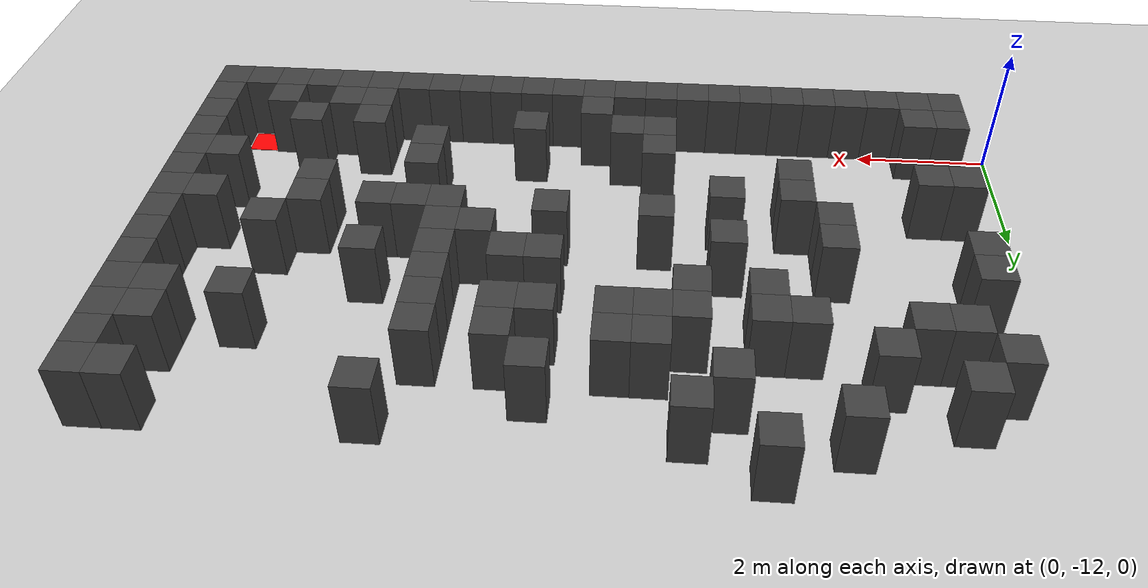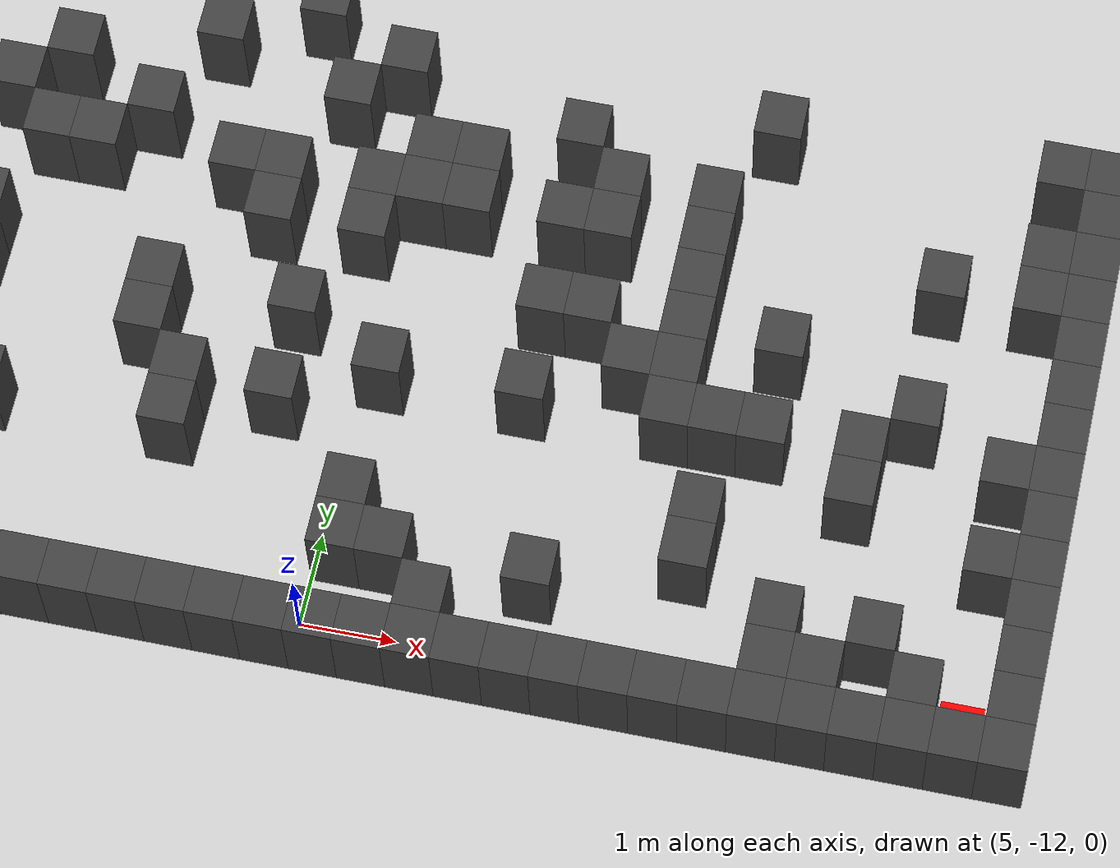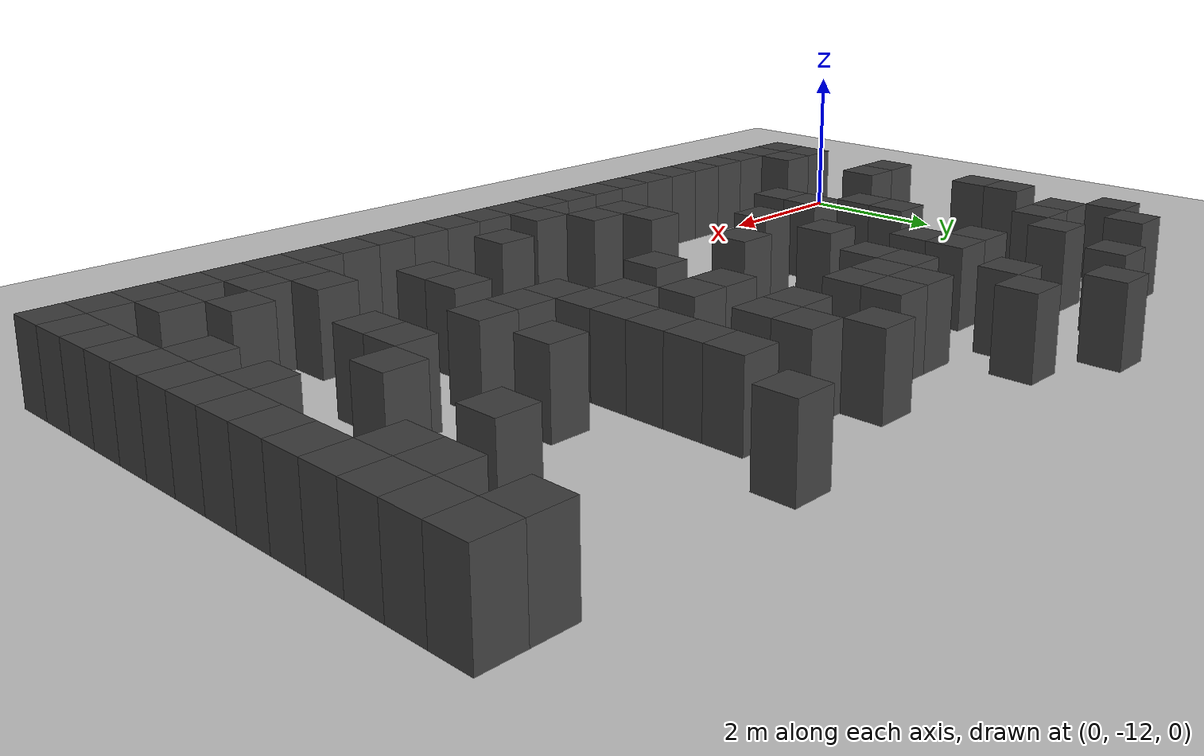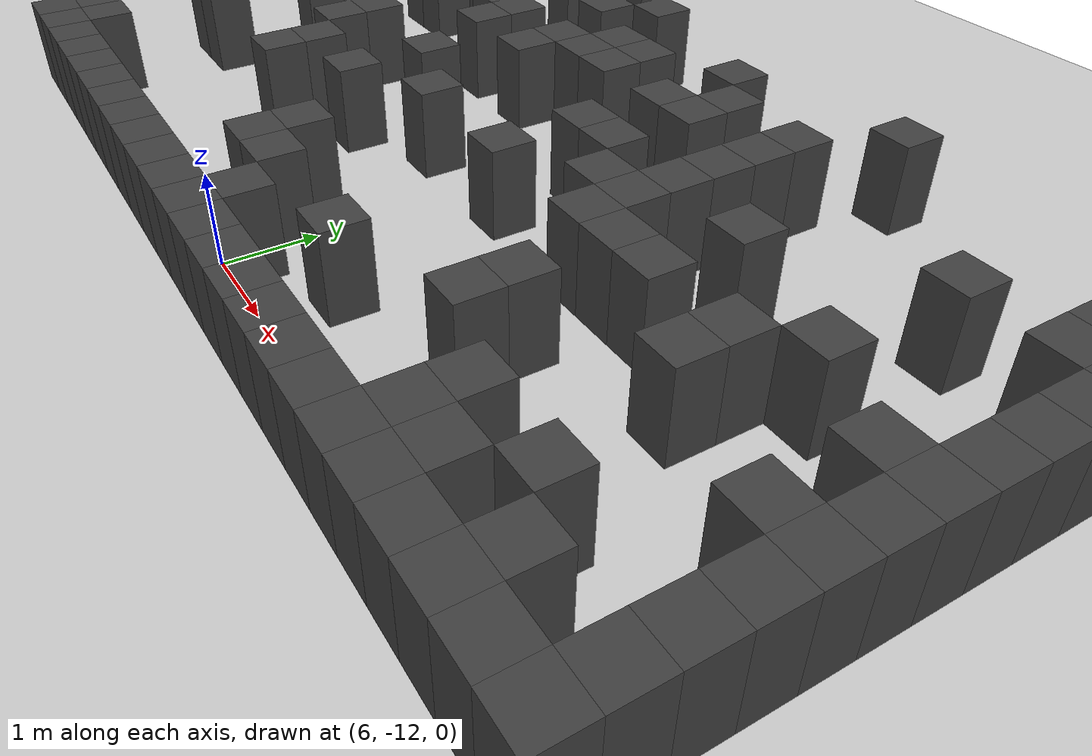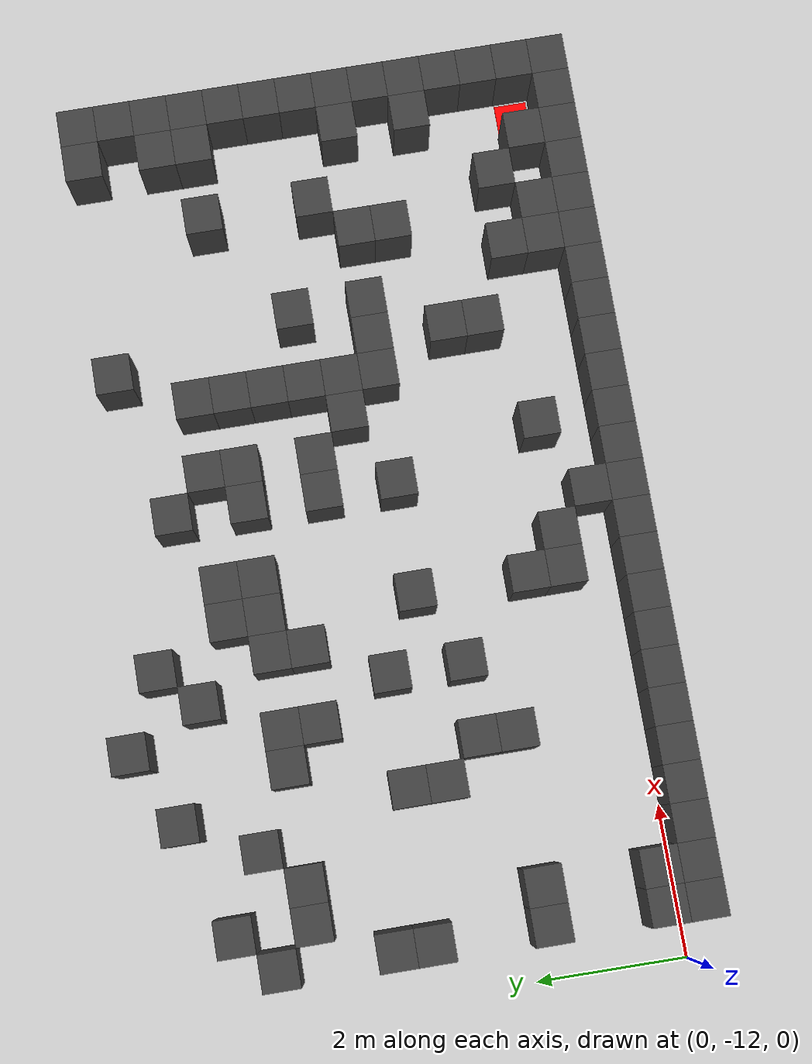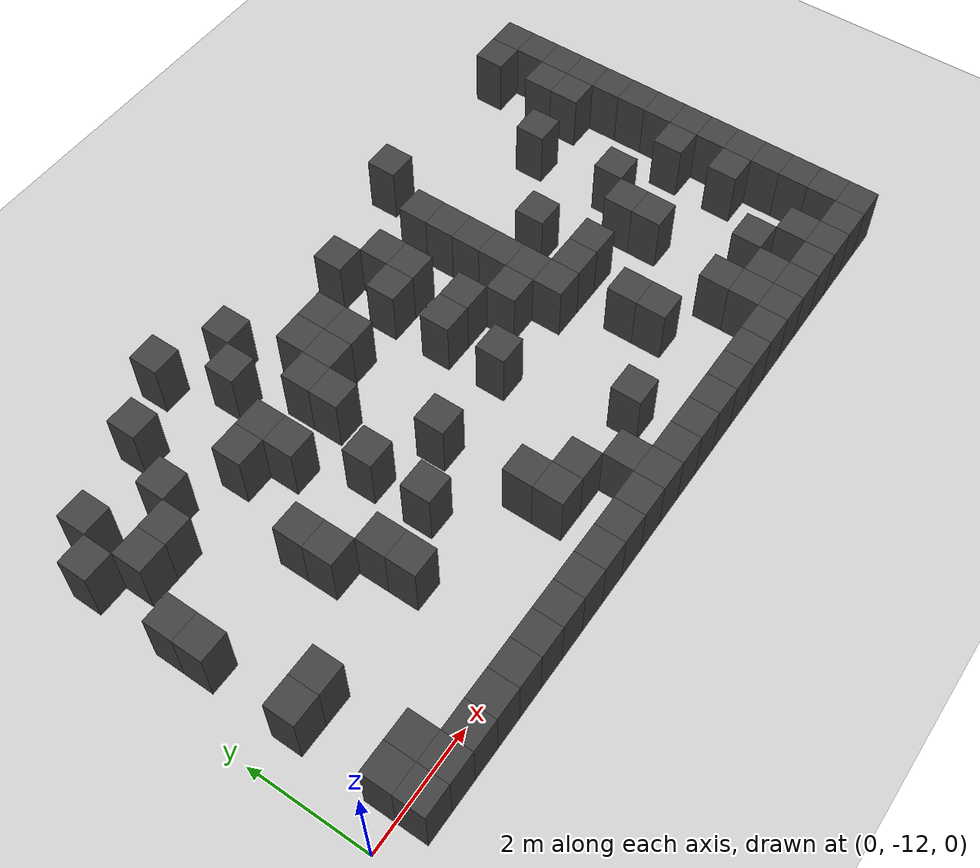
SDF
<sdf version="1.7">
 <world name="map_4009">
  <model name="ground_plane">
   <static>true</static>
   <link name="link">
    <collision name="collision">
     <geometry><plane><normal>0 0 1</normal><size>200 200</size></plane></geometry>
    </collision>
    <visual name="visual">
     <geometry><plane><normal>0 0 1</normal><size>200 200</size></plane></geometry>
     <material><ambient>0.8 0.8 0.8 1</ambient><diffuse>0.8 0.8 0.8 1</diffuse></material>
    </visual>
   </link>
  </model>
  <model name="maze_environment">
   <static>true</static>
   <link name="wall_439">
    <pose>3.750 -5.250 0.500 0 0 0</pose>
    <collision name="col"><geometry><box><size>0.5 0.5 1.0</size></box></geometry></collision>
    <visual name="vis">
     <geometry><box><size>0.5 0.5 1.0</size></box></geometry>
     <material><ambient>0.15 0.15 0.15 1</ambient><diffuse>0.25 0.25 0.25 1</diffuse></material>
    </visual>
   </link>
   <link name="wall_450">
    <pose>2.750 -5.750 0.500 0 0 0</pose>
    <collision name="col"><geometry><box><size>0.5 0.5 1.0</size></box></geometry></collision>
    <visual name="vis">
     <geometry><box><size>0.5 0.5 1.0</size></box></geometry>
     <material><ambient>0.15 0.15 0.15 1</ambient><diffuse>0.25 0.25 0.25 1</diffuse></material>
    </visual>
   </link>
   <link name="wall_451">
    <pose>4.750 -5.750 0.500 0 0 0</pose>
    <collision name="col"><geometry><box><size>0.5 0.5 1.0</size></box></geometry></collision>
    <visual name="vis">
     <geometry><box><size>0.5 0.5 1.0</size></box></geometry>
     <material><ambient>0.15 0.15 0.15 1</ambient><diffuse>0.25 0.25 0.25 1</diffuse></material>
    </visual>
   </link>
   <link name="wall_452">
    <pose>8.750 -5.750 0.500 0 0 0</pose>
    <collision name="col"><geometry><box><size>0.5 0.5 1.0</size></box></geometry></collision>
    <visual name="vis">
     <geometry><box><size>0.5 0.5 1.0</size></box></geometry>
     <material><ambient>0.15 0.15 0.15 1</ambient><diffuse>0.25 0.25 0.25 1</diffuse></material>
    </visual>
   </link>
   <link name="wall_453">
    <pose>11.750 -5.750 0.500 0 0 0</pose>
    <collision name="col"><geometry><box><size>0.5 0.5 1.0</size></box></geometry></collision>
    <visual name="vis">
     <geometry><box><size>0.5 0.5 1.0</size></box></geometry>
     <material><ambient>0.15 0.15 0.15 1</ambient><diffuse>0.25 0.25 0.25 1</diffuse></material>
    </visual>
   </link>
   <link name="wall_454">
    <pose>12.250 -5.750 0.500 0 0 0</pose>
    <collision name="col"><geometry><box><size>0.5 0.5 1.0</size></box></geometry></collision>
    <visual name="vis">
     <geometry><box><size>0.5 0.5 1.0</size></box></geometry>
     <material><ambient>0.15 0.15 0.15 1</ambient><diffuse>0.25 0.25 0.25 1</diffuse></material>
    </visual>
   </link>
   <link name="wall_460">
    <pose>1.250 -6.250 0.500 0 0 0</pose>
    <collision name="col"><geometry><box><size>0.5 0.5 1.0</size></box></geometry></collision>
    <visual name="vis">
     <geometry><box><size>0.5 0.5 1.0</size></box></geometry>
     <material><ambient>0.15 0.15 0.15 1</ambient><diffuse>0.25 0.25 0.25 1</diffuse></material>
    </visual>
   </link>
   <link name="wall_461">
    <pose>4.250 -6.250 0.500 0 0 0</pose>
    <collision name="col"><geometry><box><size>0.5 0.5 1.0</size></box></geometry></collision>
    <visual name="vis">
     <geometry><box><size>0.5 0.5 1.0</size></box></geometry>
     <material><ambient>0.15 0.15 0.15 1</ambient><diffuse>0.25 0.25 0.25 1</diffuse></material>
    </visual>
   </link>
   <link name="wall_462">
    <pose>6.750 -6.250 0.500 0 0 0</pose>
    <collision name="col"><geometry><box><size>0.5 0.5 1.0</size></box></geometry></collision>
    <visual name="vis">
     <geometry><box><size>0.5 0.5 1.0</size></box></geometry>
     <material><ambient>0.15 0.15 0.15 1</ambient><diffuse>0.25 0.25 0.25 1</diffuse></material>
    </visual>
   </link>
   <link name="wall_463">
    <pose>12.250 -6.250 0.500 0 0 0</pose>
    <collision name="col"><geometry><box><size>0.5 0.5 1.0</size></box></geometry></collision>
    <visual name="vis">
     <geometry><box><size>0.5 0.5 1.0</size></box></geometry>
     <material><ambient>0.15 0.15 0.15 1</ambient><diffuse>0.25 0.25 0.25 1</diffuse></material>
    </visual>
   </link>
   <link name="wall_472">
    <pose>0.750 -6.750 0.500 0 0 0</pose>
    <collision name="col"><geometry><box><size>0.5 0.5 1.0</size></box></geometry></collision>
    <visual name="vis">
     <geometry><box><size>0.5 0.5 1.0</size></box></geometry>
     <material><ambient>0.15 0.15 0.15 1</ambient><diffuse>0.25 0.25 0.25 1</diffuse></material>
    </visual>
   </link>
   <link name="wall_473">
    <pose>2.250 -6.750 0.500 0 0 0</pose>
    <collision name="col"><geometry><box><size>0.5 0.5 1.0</size></box></geometry></collision>
    <visual name="vis">
     <geometry><box><size>0.5 0.5 1.0</size></box></geometry>
     <material><ambient>0.15 0.15 0.15 1</ambient><diffuse>0.25 0.25 0.25 1</diffuse></material>
    </visual>
   </link>
   <link name="wall_474">
    <pose>5.250 -6.750 0.500 0 0 0</pose>
    <collision name="col"><geometry><box><size>0.5 0.5 1.0</size></box></geometry></collision>
    <visual name="vis">
     <geometry><box><size>0.5 0.5 1.0</size></box></geometry>
     <material><ambient>0.15 0.15 0.15 1</ambient><diffuse>0.25 0.25 0.25 1</diffuse></material>
    </visual>
   </link>
   <link name="wall_475">
    <pose>5.750 -6.750 0.500 0 0 0</pose>
    <collision name="col"><geometry><box><size>0.5 0.5 1.0</size></box></geometry></collision>
    <visual name="vis">
     <geometry><box><size>0.5 0.5 1.0</size></box></geometry>
     <material><ambient>0.15 0.15 0.15 1</ambient><diffuse>0.25 0.25 0.25 1</diffuse></material>
    </visual>
   </link>
   <link name="wall_476">
    <pose>7.250 -6.750 0.500 0 0 0</pose>
    <collision name="col"><geometry><box><size>0.5 0.5 1.0</size></box></geometry></collision>
    <visual name="vis">
     <geometry><box><size>0.5 0.5 1.0</size></box></geometry>
     <material><ambient>0.15 0.15 0.15 1</ambient><diffuse>0.25 0.25 0.25 1</diffuse></material>
    </visual>
   </link>
   <link name="wall_477">
    <pose>8.250 -6.750 0.500 0 0 0</pose>
    <collision name="col"><geometry><box><size>0.5 0.5 1.0</size></box></geometry></collision>
    <visual name="vis">
     <geometry><box><size>0.5 0.5 1.0</size></box></geometry>
     <material><ambient>0.15 0.15 0.15 1</ambient><diffuse>0.25 0.25 0.25 1</diffuse></material>
    </visual>
   </link>
   <link name="wall_478">
    <pose>11.750 -6.750 0.500 0 0 0</pose>
    <collision name="col"><geometry><box><size>0.5 0.5 1.0</size></box></geometry></collision>
    <visual name="vis">
     <geometry><box><size>0.5 0.5 1.0</size></box></geometry>
     <material><ambient>0.15 0.15 0.15 1</ambient><diffuse>0.25 0.25 0.25 1</diffuse></material>
    </visual>
   </link>
   <link name="wall_479">
    <pose>12.250 -6.750 0.500 0 0 0</pose>
    <collision name="col"><geometry><box><size>0.5 0.5 1.0</size></box></geometry></collision>
    <visual name="vis">
     <geometry><box><size>0.5 0.5 1.0</size></box></geometry>
     <material><ambient>0.15 0.15 0.15 1</ambient><diffuse>0.25 0.25 0.25 1</diffuse></material>
    </visual>
   </link>
   <link name="wall_484">
    <pose>1.250 -7.250 0.500 0 0 0</pose>
    <collision name="col"><geometry><box><size>0.5 0.5 1.0</size></box></geometry></collision>
    <visual name="vis">
     <geometry><box><size>0.5 0.5 1.0</size></box></geometry>
     <material><ambient>0.15 0.15 0.15 1</ambient><diffuse>0.25 0.25 0.25 1</diffuse></material>
    </visual>
   </link>
   <link name="wall_485">
    <pose>1.750 -7.250 0.500 0 0 0</pose>
    <collision name="col"><geometry><box><size>0.5 0.5 1.0</size></box></geometry></collision>
    <visual name="vis">
     <geometry><box><size>0.5 0.5 1.0</size></box></geometry>
     <material><ambient>0.15 0.15 0.15 1</ambient><diffuse>0.25 0.25 0.25 1</diffuse></material>
    </visual>
   </link>
   <link name="wall_486">
    <pose>3.250 -7.250 0.500 0 0 0</pose>
    <collision name="col"><geometry><box><size>0.5 0.5 1.0</size></box></geometry></collision>
    <visual name="vis">
     <geometry><box><size>0.5 0.5 1.0</size></box></geometry>
     <material><ambient>0.15 0.15 0.15 1</ambient><diffuse>0.25 0.25 0.25 1</diffuse></material>
    </visual>
   </link>
   <link name="wall_487">
    <pose>3.750 -7.250 0.500 0 0 0</pose>
    <collision name="col"><geometry><box><size>0.5 0.5 1.0</size></box></geometry></collision>
    <visual name="vis">
     <geometry><box><size>0.5 0.5 1.0</size></box></geometry>
     <material><ambient>0.15 0.15 0.15 1</ambient><diffuse>0.25 0.25 0.25 1</diffuse></material>
    </visual>
   </link>
   <link name="wall_488">
    <pose>4.750 -7.250 0.500 0 0 0</pose>
    <collision name="col"><geometry><box><size>0.5 0.5 1.0</size></box></geometry></collision>
    <visual name="vis">
     <geometry><box><size>0.5 0.5 1.0</size></box></geometry>
     <material><ambient>0.15 0.15 0.15 1</ambient><diffuse>0.25 0.25 0.25 1</diffuse></material>
    </visual>
   </link>
   <link name="wall_489">
    <pose>5.250 -7.250 0.500 0 0 0</pose>
    <collision name="col"><geometry><box><size>0.5 0.5 1.0</size></box></geometry></collision>
    <visual name="vis">
     <geometry><box><size>0.5 0.5 1.0</size></box></geometry>
     <material><ambient>0.15 0.15 0.15 1</ambient><diffuse>0.25 0.25 0.25 1</diffuse></material>
    </visual>
   </link>
   <link name="wall_490">
    <pose>5.750 -7.250 0.500 0 0 0</pose>
    <collision name="col"><geometry><box><size>0.5 0.5 1.0</size></box></geometry></collision>
    <visual name="vis">
     <geometry><box><size>0.5 0.5 1.0</size></box></geometry>
     <material><ambient>0.15 0.15 0.15 1</ambient><diffuse>0.25 0.25 0.25 1</diffuse></material>
    </visual>
   </link>
   <link name="wall_491">
    <pose>6.750 -7.250 0.500 0 0 0</pose>
    <collision name="col"><geometry><box><size>0.5 0.5 1.0</size></box></geometry></collision>
    <visual name="vis">
     <geometry><box><size>0.5 0.5 1.0</size></box></geometry>
     <material><ambient>0.15 0.15 0.15 1</ambient><diffuse>0.25 0.25 0.25 1</diffuse></material>
    </visual>
   </link>
   <link name="wall_492">
    <pose>7.250 -7.250 0.500 0 0 0</pose>
    <collision name="col"><geometry><box><size>0.5 0.5 1.0</size></box></geometry></collision>
    <visual name="vis">
     <geometry><box><size>0.5 0.5 1.0</size></box></geometry>
     <material><ambient>0.15 0.15 0.15 1</ambient><diffuse>0.25 0.25 0.25 1</diffuse></material>
    </visual>
   </link>
   <link name="wall_493">
    <pose>8.250 -7.250 0.500 0 0 0</pose>
    <collision name="col"><geometry><box><size>0.5 0.5 1.0</size></box></geometry></collision>
    <visual name="vis">
     <geometry><box><size>0.5 0.5 1.0</size></box></geometry>
     <material><ambient>0.15 0.15 0.15 1</ambient><diffuse>0.25 0.25 0.25 1</diffuse></material>
    </visual>
   </link>
   <link name="wall_494">
    <pose>10.750 -7.250 0.500 0 0 0</pose>
    <collision name="col"><geometry><box><size>0.5 0.5 1.0</size></box></geometry></collision>
    <visual name="vis">
     <geometry><box><size>0.5 0.5 1.0</size></box></geometry>
     <material><ambient>0.15 0.15 0.15 1</ambient><diffuse>0.25 0.25 0.25 1</diffuse></material>
    </visual>
   </link>
   <link name="wall_495">
    <pose>11.750 -7.250 0.500 0 0 0</pose>
    <collision name="col"><geometry><box><size>0.5 0.5 1.0</size></box></geometry></collision>
    <visual name="vis">
     <geometry><box><size>0.5 0.5 1.0</size></box></geometry>
     <material><ambient>0.15 0.15 0.15 1</ambient><diffuse>0.25 0.25 0.25 1</diffuse></material>
    </visual>
   </link>
   <link name="wall_496">
    <pose>12.250 -7.250 0.500 0 0 0</pose>
    <collision name="col"><geometry><box><size>0.5 0.5 1.0</size></box></geometry></collision>
    <visual name="vis">
     <geometry><box><size>0.5 0.5 1.0</size></box></geometry>
     <material><ambient>0.15 0.15 0.15 1</ambient><diffuse>0.25 0.25 0.25 1</diffuse></material>
    </visual>
   </link>
   <link name="wall_501">
    <pose>3.750 -7.750 0.500 0 0 0</pose>
    <collision name="col"><geometry><box><size>0.5 0.5 1.0</size></box></geometry></collision>
    <visual name="vis">
     <geometry><box><size>0.5 0.5 1.0</size></box></geometry>
     <material><ambient>0.15 0.15 0.15 1</ambient><diffuse>0.25 0.25 0.25 1</diffuse></material>
    </visual>
   </link>
   <link name="wall_502">
    <pose>4.750 -7.750 0.500 0 0 0</pose>
    <collision name="col"><geometry><box><size>0.5 0.5 1.0</size></box></geometry></collision>
    <visual name="vis">
     <geometry><box><size>0.5 0.5 1.0</size></box></geometry>
     <material><ambient>0.15 0.15 0.15 1</ambient><diffuse>0.25 0.25 0.25 1</diffuse></material>
    </visual>
   </link>
   <link name="wall_503">
    <pose>8.250 -7.750 0.500 0 0 0</pose>
    <collision name="col"><geometry><box><size>0.5 0.5 1.0</size></box></geometry></collision>
    <visual name="vis">
     <geometry><box><size>0.5 0.5 1.0</size></box></geometry>
     <material><ambient>0.15 0.15 0.15 1</ambient><diffuse>0.25 0.25 0.25 1</diffuse></material>
    </visual>
   </link>
   <link name="wall_504">
    <pose>12.250 -7.750 0.500 0 0 0</pose>
    <collision name="col"><geometry><box><size>0.5 0.5 1.0</size></box></geometry></collision>
    <visual name="vis">
     <geometry><box><size>0.5 0.5 1.0</size></box></geometry>
     <material><ambient>0.15 0.15 0.15 1</ambient><diffuse>0.25 0.25 0.25 1</diffuse></material>
    </visual>
   </link>
   <link name="wall_510">
    <pose>0.750 -8.250 0.500 0 0 0</pose>
    <collision name="col"><geometry><box><size>0.5 0.5 1.0</size></box></geometry></collision>
    <visual name="vis">
     <geometry><box><size>0.5 0.5 1.0</size></box></geometry>
     <material><ambient>0.15 0.15 0.15 1</ambient><diffuse>0.25 0.25 0.25 1</diffuse></material>
    </visual>
   </link>
   <link name="wall_511">
    <pose>6.750 -8.250 0.500 0 0 0</pose>
    <collision name="col"><geometry><box><size>0.5 0.5 1.0</size></box></geometry></collision>
    <visual name="vis">
     <geometry><box><size>0.5 0.5 1.0</size></box></geometry>
     <material><ambient>0.15 0.15 0.15 1</ambient><diffuse>0.25 0.25 0.25 1</diffuse></material>
    </visual>
   </link>
   <link name="wall_512">
    <pose>7.250 -8.250 0.500 0 0 0</pose>
    <collision name="col"><geometry><box><size>0.5 0.5 1.0</size></box></geometry></collision>
    <visual name="vis">
     <geometry><box><size>0.5 0.5 1.0</size></box></geometry>
     <material><ambient>0.15 0.15 0.15 1</ambient><diffuse>0.25 0.25 0.25 1</diffuse></material>
    </visual>
   </link>
   <link name="wall_513">
    <pose>8.250 -8.250 0.500 0 0 0</pose>
    <collision name="col"><geometry><box><size>0.5 0.5 1.0</size></box></geometry></collision>
    <visual name="vis">
     <geometry><box><size>0.5 0.5 1.0</size></box></geometry>
     <material><ambient>0.15 0.15 0.15 1</ambient><diffuse>0.25 0.25 0.25 1</diffuse></material>
    </visual>
   </link>
   <link name="wall_514">
    <pose>9.250 -8.250 0.500 0 0 0</pose>
    <collision name="col"><geometry><box><size>0.5 0.5 1.0</size></box></geometry></collision>
    <visual name="vis">
     <geometry><box><size>0.5 0.5 1.0</size></box></geometry>
     <material><ambient>0.15 0.15 0.15 1</ambient><diffuse>0.25 0.25 0.25 1</diffuse></material>
    </visual>
   </link>
   <link name="wall_515">
    <pose>12.250 -8.250 0.500 0 0 0</pose>
    <collision name="col"><geometry><box><size>0.5 0.5 1.0</size></box></geometry></collision>
    <visual name="vis">
     <geometry><box><size>0.5 0.5 1.0</size></box></geometry>
     <material><ambient>0.15 0.15 0.15 1</ambient><diffuse>0.25 0.25 0.25 1</diffuse></material>
    </visual>
   </link>
   <link name="wall_520">
    <pose>0.750 -8.750 0.500 0 0 0</pose>
    <collision name="col"><geometry><box><size>0.5 0.5 1.0</size></box></geometry></collision>
    <visual name="vis">
     <geometry><box><size>0.5 0.5 1.0</size></box></geometry>
     <material><ambient>0.15 0.15 0.15 1</ambient><diffuse>0.25 0.25 0.25 1</diffuse></material>
    </visual>
   </link>
   <link name="wall_521">
    <pose>2.750 -8.750 0.500 0 0 0</pose>
    <collision name="col"><geometry><box><size>0.5 0.5 1.0</size></box></geometry></collision>
    <visual name="vis">
     <geometry><box><size>0.5 0.5 1.0</size></box></geometry>
     <material><ambient>0.15 0.15 0.15 1</ambient><diffuse>0.25 0.25 0.25 1</diffuse></material>
    </visual>
   </link>
   <link name="wall_522">
    <pose>4.250 -8.750 0.500 0 0 0</pose>
    <collision name="col"><geometry><box><size>0.5 0.5 1.0</size></box></geometry></collision>
    <visual name="vis">
     <geometry><box><size>0.5 0.5 1.0</size></box></geometry>
     <material><ambient>0.15 0.15 0.15 1</ambient><diffuse>0.25 0.25 0.25 1</diffuse></material>
    </visual>
   </link>
   <link name="wall_523">
    <pose>7.750 -8.750 0.500 0 0 0</pose>
    <collision name="col"><geometry><box><size>0.5 0.5 1.0</size></box></geometry></collision>
    <visual name="vis">
     <geometry><box><size>0.5 0.5 1.0</size></box></geometry>
     <material><ambient>0.15 0.15 0.15 1</ambient><diffuse>0.25 0.25 0.25 1</diffuse></material>
    </visual>
   </link>
   <link name="wall_524">
    <pose>8.250 -8.750 0.500 0 0 0</pose>
    <collision name="col"><geometry><box><size>0.5 0.5 1.0</size></box></geometry></collision>
    <visual name="vis">
     <geometry><box><size>0.5 0.5 1.0</size></box></geometry>
     <material><ambient>0.15 0.15 0.15 1</ambient><diffuse>0.25 0.25 0.25 1</diffuse></material>
    </visual>
   </link>
   <link name="wall_525">
    <pose>10.750 -8.750 0.500 0 0 0</pose>
    <collision name="col"><geometry><box><size>0.5 0.5 1.0</size></box></geometry></collision>
    <visual name="vis">
     <geometry><box><size>0.5 0.5 1.0</size></box></geometry>
     <material><ambient>0.15 0.15 0.15 1</ambient><diffuse>0.25 0.25 0.25 1</diffuse></material>
    </visual>
   </link>
   <link name="wall_526">
    <pose>12.250 -8.750 0.500 0 0 0</pose>
    <collision name="col"><geometry><box><size>0.5 0.5 1.0</size></box></geometry></collision>
    <visual name="vis">
     <geometry><box><size>0.5 0.5 1.0</size></box></geometry>
     <material><ambient>0.15 0.15 0.15 1</ambient><diffuse>0.25 0.25 0.25 1</diffuse></material>
    </visual>
   </link>
   <link name="wall_534">
    <pose>2.750 -9.250 0.500 0 0 0</pose>
    <collision name="col"><geometry><box><size>0.5 0.5 1.0</size></box></geometry></collision>
    <visual name="vis">
     <geometry><box><size>0.5 0.5 1.0</size></box></geometry>
     <material><ambient>0.15 0.15 0.15 1</ambient><diffuse>0.25 0.25 0.25 1</diffuse></material>
    </visual>
   </link>
   <link name="wall_535">
    <pose>5.250 -9.250 0.500 0 0 0</pose>
    <collision name="col"><geometry><box><size>0.5 0.5 1.0</size></box></geometry></collision>
    <visual name="vis">
     <geometry><box><size>0.5 0.5 1.0</size></box></geometry>
     <material><ambient>0.15 0.15 0.15 1</ambient><diffuse>0.25 0.25 0.25 1</diffuse></material>
    </visual>
   </link>
   <link name="wall_536">
    <pose>6.750 -9.250 0.500 0 0 0</pose>
    <collision name="col"><geometry><box><size>0.5 0.5 1.0</size></box></geometry></collision>
    <visual name="vis">
     <geometry><box><size>0.5 0.5 1.0</size></box></geometry>
     <material><ambient>0.15 0.15 0.15 1</ambient><diffuse>0.25 0.25 0.25 1</diffuse></material>
    </visual>
   </link>
   <link name="wall_537">
    <pose>8.250 -9.250 0.500 0 0 0</pose>
    <collision name="col"><geometry><box><size>0.5 0.5 1.0</size></box></geometry></collision>
    <visual name="vis">
     <geometry><box><size>0.5 0.5 1.0</size></box></geometry>
     <material><ambient>0.15 0.15 0.15 1</ambient><diffuse>0.25 0.25 0.25 1</diffuse></material>
    </visual>
   </link>
   <link name="wall_538">
    <pose>8.750 -9.250 0.500 0 0 0</pose>
    <collision name="col"><geometry><box><size>0.5 0.5 1.0</size></box></geometry></collision>
    <visual name="vis">
     <geometry><box><size>0.5 0.5 1.0</size></box></geometry>
     <material><ambient>0.15 0.15 0.15 1</ambient><diffuse>0.25 0.25 0.25 1</diffuse></material>
    </visual>
   </link>
   <link name="wall_539">
    <pose>9.250 -9.250 0.500 0 0 0</pose>
    <collision name="col"><geometry><box><size>0.5 0.5 1.0</size></box></geometry></collision>
    <visual name="vis">
     <geometry><box><size>0.5 0.5 1.0</size></box></geometry>
     <material><ambient>0.15 0.15 0.15 1</ambient><diffuse>0.25 0.25 0.25 1</diffuse></material>
    </visual>
   </link>
   <link name="wall_540">
    <pose>10.250 -9.250 0.500 0 0 0</pose>
    <collision name="col"><geometry><box><size>0.5 0.5 1.0</size></box></geometry></collision>
    <visual name="vis">
     <geometry><box><size>0.5 0.5 1.0</size></box></geometry>
     <material><ambient>0.15 0.15 0.15 1</ambient><diffuse>0.25 0.25 0.25 1</diffuse></material>
    </visual>
   </link>
   <link name="wall_541">
    <pose>11.750 -9.250 0.500 0 0 0</pose>
    <collision name="col"><geometry><box><size>0.5 0.5 1.0</size></box></geometry></collision>
    <visual name="vis">
     <geometry><box><size>0.5 0.5 1.0</size></box></geometry>
     <material><ambient>0.15 0.15 0.15 1</ambient><diffuse>0.25 0.25 0.25 1</diffuse></material>
    </visual>
   </link>
   <link name="wall_542">
    <pose>12.250 -9.250 0.500 0 0 0</pose>
    <collision name="col"><geometry><box><size>0.5 0.5 1.0</size></box></geometry></collision>
    <visual name="vis">
     <geometry><box><size>0.5 0.5 1.0</size></box></geometry>
     <material><ambient>0.15 0.15 0.15 1</ambient><diffuse>0.25 0.25 0.25 1</diffuse></material>
    </visual>
   </link>
   <link name="wall_548">
    <pose>3.250 -9.750 0.500 0 0 0</pose>
    <collision name="col"><geometry><box><size>0.5 0.5 1.0</size></box></geometry></collision>
    <visual name="vis">
     <geometry><box><size>0.5 0.5 1.0</size></box></geometry>
     <material><ambient>0.15 0.15 0.15 1</ambient><diffuse>0.25 0.25 0.25 1</diffuse></material>
    </visual>
   </link>
   <link name="wall_549">
    <pose>4.250 -9.750 0.500 0 0 0</pose>
    <collision name="col"><geometry><box><size>0.5 0.5 1.0</size></box></geometry></collision>
    <visual name="vis">
     <geometry><box><size>0.5 0.5 1.0</size></box></geometry>
     <material><ambient>0.15 0.15 0.15 1</ambient><diffuse>0.25 0.25 0.25 1</diffuse></material>
    </visual>
   </link>
   <link name="wall_550">
    <pose>10.250 -9.750 0.500 0 0 0</pose>
    <collision name="col"><geometry><box><size>0.5 0.5 1.0</size></box></geometry></collision>
    <visual name="vis">
     <geometry><box><size>0.5 0.5 1.0</size></box></geometry>
     <material><ambient>0.15 0.15 0.15 1</ambient><diffuse>0.25 0.25 0.25 1</diffuse></material>
    </visual>
   </link>
   <link name="wall_551">
    <pose>12.250 -9.750 0.500 0 0 0</pose>
    <collision name="col"><geometry><box><size>0.5 0.5 1.0</size></box></geometry></collision>
    <visual name="vis">
     <geometry><box><size>0.5 0.5 1.0</size></box></geometry>
     <material><ambient>0.15 0.15 0.15 1</ambient><diffuse>0.25 0.25 0.25 1</diffuse></material>
    </visual>
   </link>
   <link name="wall_561">
    <pose>0.750 -10.250 0.500 0 0 0</pose>
    <collision name="col"><geometry><box><size>0.5 0.5 1.0</size></box></geometry></collision>
    <visual name="vis">
     <geometry><box><size>0.5 0.5 1.0</size></box></geometry>
     <material><ambient>0.15 0.15 0.15 1</ambient><diffuse>0.25 0.25 0.25 1</diffuse></material>
    </visual>
   </link>
   <link name="wall_562">
    <pose>1.250 -10.250 0.500 0 0 0</pose>
    <collision name="col"><geometry><box><size>0.5 0.5 1.0</size></box></geometry></collision>
    <visual name="vis">
     <geometry><box><size>0.5 0.5 1.0</size></box></geometry>
     <material><ambient>0.15 0.15 0.15 1</ambient><diffuse>0.25 0.25 0.25 1</diffuse></material>
    </visual>
   </link>
   <link name="wall_563">
    <pose>3.250 -10.250 0.500 0 0 0</pose>
    <collision name="col"><geometry><box><size>0.5 0.5 1.0</size></box></geometry></collision>
    <visual name="vis">
     <geometry><box><size>0.5 0.5 1.0</size></box></geometry>
     <material><ambient>0.15 0.15 0.15 1</ambient><diffuse>0.25 0.25 0.25 1</diffuse></material>
    </visual>
   </link>
   <link name="wall_564">
    <pose>8.750 -10.250 0.500 0 0 0</pose>
    <collision name="col"><geometry><box><size>0.5 0.5 1.0</size></box></geometry></collision>
    <visual name="vis">
     <geometry><box><size>0.5 0.5 1.0</size></box></geometry>
     <material><ambient>0.15 0.15 0.15 1</ambient><diffuse>0.25 0.25 0.25 1</diffuse></material>
    </visual>
   </link>
   <link name="wall_565">
    <pose>11.750 -10.250 0.500 0 0 0</pose>
    <collision name="col"><geometry><box><size>0.5 0.5 1.0</size></box></geometry></collision>
    <visual name="vis">
     <geometry><box><size>0.5 0.5 1.0</size></box></geometry>
     <material><ambient>0.15 0.15 0.15 1</ambient><diffuse>0.25 0.25 0.25 1</diffuse></material>
    </visual>
   </link>
   <link name="wall_566">
    <pose>12.250 -10.250 0.500 0 0 0</pose>
    <collision name="col"><geometry><box><size>0.5 0.5 1.0</size></box></geometry></collision>
    <visual name="vis">
     <geometry><box><size>0.5 0.5 1.0</size></box></geometry>
     <material><ambient>0.15 0.15 0.15 1</ambient><diffuse>0.25 0.25 0.25 1</diffuse></material>
    </visual>
   </link>
   <link name="wall_572">
    <pose>5.250 -10.750 0.500 0 0 0</pose>
    <collision name="col"><geometry><box><size>0.5 0.5 1.0</size></box></geometry></collision>
    <visual name="vis">
     <geometry><box><size>0.5 0.5 1.0</size></box></geometry>
     <material><ambient>0.15 0.15 0.15 1</ambient><diffuse>0.25 0.25 0.25 1</diffuse></material>
    </visual>
   </link>
   <link name="wall_573">
    <pose>8.750 -10.750 0.500 0 0 0</pose>
    <collision name="col"><geometry><box><size>0.5 0.5 1.0</size></box></geometry></collision>
    <visual name="vis">
     <geometry><box><size>0.5 0.5 1.0</size></box></geometry>
     <material><ambient>0.15 0.15 0.15 1</ambient><diffuse>0.25 0.25 0.25 1</diffuse></material>
    </visual>
   </link>
   <link name="wall_574">
    <pose>12.250 -10.750 0.500 0 0 0</pose>
    <collision name="col"><geometry><box><size>0.5 0.5 1.0</size></box></geometry></collision>
    <visual name="vis">
     <geometry><box><size>0.5 0.5 1.0</size></box></geometry>
     <material><ambient>0.15 0.15 0.15 1</ambient><diffuse>0.25 0.25 0.25 1</diffuse></material>
    </visual>
   </link>
   <link name="wall_579">
    <pose>5.250 -11.250 0.500 0 0 0</pose>
    <collision name="col"><geometry><box><size>0.5 0.5 1.0</size></box></geometry></collision>
    <visual name="vis">
     <geometry><box><size>0.5 0.5 1.0</size></box></geometry>
     <material><ambient>0.15 0.15 0.15 1</ambient><diffuse>0.25 0.25 0.25 1</diffuse></material>
    </visual>
   </link>
   <link name="wall_580">
    <pose>5.750 -11.250 0.500 0 0 0</pose>
    <collision name="col"><geometry><box><size>0.5 0.5 1.0</size></box></geometry></collision>
    <visual name="vis">
     <geometry><box><size>0.5 0.5 1.0</size></box></geometry>
     <material><ambient>0.15 0.15 0.15 1</ambient><diffuse>0.25 0.25 0.25 1</diffuse></material>
    </visual>
   </link>
   <link name="wall_581">
    <pose>7.250 -11.250 0.500 0 0 0</pose>
    <collision name="col"><geometry><box><size>0.5 0.5 1.0</size></box></geometry></collision>
    <visual name="vis">
     <geometry><box><size>0.5 0.5 1.0</size></box></geometry>
     <material><ambient>0.15 0.15 0.15 1</ambient><diffuse>0.25 0.25 0.25 1</diffuse></material>
    </visual>
   </link>
   <link name="wall_582">
    <pose>9.750 -11.250 0.500 0 0 0</pose>
    <collision name="col"><geometry><box><size>0.5 0.5 1.0</size></box></geometry></collision>
    <visual name="vis">
     <geometry><box><size>0.5 0.5 1.0</size></box></geometry>
     <material><ambient>0.15 0.15 0.15 1</ambient><diffuse>0.25 0.25 0.25 1</diffuse></material>
    </visual>
   </link>
   <link name="wall_583">
    <pose>10.750 -11.250 0.500 0 0 0</pose>
    <collision name="col"><geometry><box><size>0.5 0.5 1.0</size></box></geometry></collision>
    <visual name="vis">
     <geometry><box><size>0.5 0.5 1.0</size></box></geometry>
     <material><ambient>0.15 0.15 0.15 1</ambient><diffuse>0.25 0.25 0.25 1</diffuse></material>
    </visual>
   </link>
   <link name="wall_584">
    <pose>12.250 -11.250 0.500 0 0 0</pose>
    <collision name="col"><geometry><box><size>0.5 0.5 1.0</size></box></geometry></collision>
    <visual name="vis">
     <geometry><box><size>0.5 0.5 1.0</size></box></geometry>
     <material><ambient>0.15 0.15 0.15 1</ambient><diffuse>0.25 0.25 0.25 1</diffuse></material>
    </visual>
   </link>
   <link name="wall_589">
    <pose>0.750 -11.750 0.500 0 0 0</pose>
    <collision name="col"><geometry><box><size>0.5 0.5 1.0</size></box></geometry></collision>
    <visual name="vis">
     <geometry><box><size>0.5 0.5 1.0</size></box></geometry>
     <material><ambient>0.15 0.15 0.15 1</ambient><diffuse>0.25 0.25 0.25 1</diffuse></material>
    </visual>
   </link>
   <link name="wall_590">
    <pose>1.250 -11.750 0.500 0 0 0</pose>
    <collision name="col"><geometry><box><size>0.5 0.5 1.0</size></box></geometry></collision>
    <visual name="vis">
     <geometry><box><size>0.5 0.5 1.0</size></box></geometry>
     <material><ambient>0.15 0.15 0.15 1</ambient><diffuse>0.25 0.25 0.25 1</diffuse></material>
    </visual>
   </link>
   <link name="wall_591">
    <pose>6.250 -11.750 0.500 0 0 0</pose>
    <collision name="col"><geometry><box><size>0.5 0.5 1.0</size></box></geometry></collision>
    <visual name="vis">
     <geometry><box><size>0.5 0.5 1.0</size></box></geometry>
     <material><ambient>0.15 0.15 0.15 1</ambient><diffuse>0.25 0.25 0.25 1</diffuse></material>
    </visual>
   </link>
   <link name="wall_592">
    <pose>9.750 -11.750 0.500 0 0 0</pose>
    <collision name="col"><geometry><box><size>0.5 0.5 1.0</size></box></geometry></collision>
    <visual name="vis">
     <geometry><box><size>0.5 0.5 1.0</size></box></geometry>
     <material><ambient>0.15 0.15 0.15 1</ambient><diffuse>0.25 0.25 0.25 1</diffuse></material>
    </visual>
   </link>
   <link name="wall_593">
    <pose>10.250 -11.750 0.500 0 0 0</pose>
    <collision name="col"><geometry><box><size>0.5 0.5 1.0</size></box></geometry></collision>
    <visual name="vis">
     <geometry><box><size>0.5 0.5 1.0</size></box></geometry>
     <material><ambient>0.15 0.15 0.15 1</ambient><diffuse>0.25 0.25 0.25 1</diffuse></material>
    </visual>
   </link>
   <link name="wall_594">
    <pose>11.250 -11.750 0.500 0 0 0</pose>
    <collision name="col"><geometry><box><size>0.5 0.5 1.0</size></box></geometry></collision>
    <visual name="vis">
     <geometry><box><size>0.5 0.5 1.0</size></box></geometry>
     <material><ambient>0.15 0.15 0.15 1</ambient><diffuse>0.25 0.25 0.25 1</diffuse></material>
    </visual>
   </link>
   <link name="wall_595">
    <pose>12.250 -11.750 0.500 0 0 0</pose>
    <collision name="col"><geometry><box><size>0.5 0.5 1.0</size></box></geometry></collision>
    <visual name="vis">
     <geometry><box><size>0.5 0.5 1.0</size></box></geometry>
     <material><ambient>0.15 0.15 0.15 1</ambient><diffuse>0.25 0.25 0.25 1</diffuse></material>
    </visual>
   </link>
   <link name="wall_622">
    <pose>0.750 -12.250 0.500 0 0 0</pose>
    <collision name="col"><geometry><box><size>0.5 0.5 1.0</size></box></geometry></collision>
    <visual name="vis">
     <geometry><box><size>0.5 0.5 1.0</size></box></geometry>
     <material><ambient>0.15 0.15 0.15 1</ambient><diffuse>0.25 0.25 0.25 1</diffuse></material>
    </visual>
   </link>
   <link name="wall_623">
    <pose>1.250 -12.250 0.500 0 0 0</pose>
    <collision name="col"><geometry><box><size>0.5 0.5 1.0</size></box></geometry></collision>
    <visual name="vis">
     <geometry><box><size>0.5 0.5 1.0</size></box></geometry>
     <material><ambient>0.15 0.15 0.15 1</ambient><diffuse>0.25 0.25 0.25 1</diffuse></material>
    </visual>
   </link>
   <link name="wall_624">
    <pose>1.750 -12.250 0.500 0 0 0</pose>
    <collision name="col"><geometry><box><size>0.5 0.5 1.0</size></box></geometry></collision>
    <visual name="vis">
     <geometry><box><size>0.5 0.5 1.0</size></box></geometry>
     <material><ambient>0.15 0.15 0.15 1</ambient><diffuse>0.25 0.25 0.25 1</diffuse></material>
    </visual>
   </link>
   <link name="wall_625">
    <pose>2.250 -12.250 0.500 0 0 0</pose>
    <collision name="col"><geometry><box><size>0.5 0.5 1.0</size></box></geometry></collision>
    <visual name="vis">
     <geometry><box><size>0.5 0.5 1.0</size></box></geometry>
     <material><ambient>0.15 0.15 0.15 1</ambient><diffuse>0.25 0.25 0.25 1</diffuse></material>
    </visual>
   </link>
   <link name="wall_626">
    <pose>2.750 -12.250 0.500 0 0 0</pose>
    <collision name="col"><geometry><box><size>0.5 0.5 1.0</size></box></geometry></collision>
    <visual name="vis">
     <geometry><box><size>0.5 0.5 1.0</size></box></geometry>
     <material><ambient>0.15 0.15 0.15 1</ambient><diffuse>0.25 0.25 0.25 1</diffuse></material>
    </visual>
   </link>
   <link name="wall_627">
    <pose>3.250 -12.250 0.500 0 0 0</pose>
    <collision name="col"><geometry><box><size>0.5 0.5 1.0</size></box></geometry></collision>
    <visual name="vis">
     <geometry><box><size>0.5 0.5 1.0</size></box></geometry>
     <material><ambient>0.15 0.15 0.15 1</ambient><diffuse>0.25 0.25 0.25 1</diffuse></material>
    </visual>
   </link>
   <link name="wall_628">
    <pose>3.750 -12.250 0.500 0 0 0</pose>
    <collision name="col"><geometry><box><size>0.5 0.5 1.0</size></box></geometry></collision>
    <visual name="vis">
     <geometry><box><size>0.5 0.5 1.0</size></box></geometry>
     <material><ambient>0.15 0.15 0.15 1</ambient><diffuse>0.25 0.25 0.25 1</diffuse></material>
    </visual>
   </link>
   <link name="wall_629">
    <pose>4.250 -12.250 0.500 0 0 0</pose>
    <collision name="col"><geometry><box><size>0.5 0.5 1.0</size></box></geometry></collision>
    <visual name="vis">
     <geometry><box><size>0.5 0.5 1.0</size></box></geometry>
     <material><ambient>0.15 0.15 0.15 1</ambient><diffuse>0.25 0.25 0.25 1</diffuse></material>
    </visual>
   </link>
   <link name="wall_630">
    <pose>4.750 -12.250 0.500 0 0 0</pose>
    <collision name="col"><geometry><box><size>0.5 0.5 1.0</size></box></geometry></collision>
    <visual name="vis">
     <geometry><box><size>0.5 0.5 1.0</size></box></geometry>
     <material><ambient>0.15 0.15 0.15 1</ambient><diffuse>0.25 0.25 0.25 1</diffuse></material>
    </visual>
   </link>
   <link name="wall_631">
    <pose>5.250 -12.250 0.500 0 0 0</pose>
    <collision name="col"><geometry><box><size>0.5 0.5 1.0</size></box></geometry></collision>
    <visual name="vis">
     <geometry><box><size>0.5 0.5 1.0</size></box></geometry>
     <material><ambient>0.15 0.15 0.15 1</ambient><diffuse>0.25 0.25 0.25 1</diffuse></material>
    </visual>
   </link>
   <link name="wall_632">
    <pose>5.750 -12.250 0.500 0 0 0</pose>
    <collision name="col"><geometry><box><size>0.5 0.5 1.0</size></box></geometry></collision>
    <visual name="vis">
     <geometry><box><size>0.5 0.5 1.0</size></box></geometry>
     <material><ambient>0.15 0.15 0.15 1</ambient><diffuse>0.25 0.25 0.25 1</diffuse></material>
    </visual>
   </link>
   <link name="wall_633">
    <pose>6.250 -12.250 0.500 0 0 0</pose>
    <collision name="col"><geometry><box><size>0.5 0.5 1.0</size></box></geometry></collision>
    <visual name="vis">
     <geometry><box><size>0.5 0.5 1.0</size></box></geometry>
     <material><ambient>0.15 0.15 0.15 1</ambient><diffuse>0.25 0.25 0.25 1</diffuse></material>
    </visual>
   </link>
   <link name="wall_634">
    <pose>6.750 -12.250 0.500 0 0 0</pose>
    <collision name="col"><geometry><box><size>0.5 0.5 1.0</size></box></geometry></collision>
    <visual name="vis">
     <geometry><box><size>0.5 0.5 1.0</size></box></geometry>
     <material><ambient>0.15 0.15 0.15 1</ambient><diffuse>0.25 0.25 0.25 1</diffuse></material>
    </visual>
   </link>
   <link name="wall_635">
    <pose>7.250 -12.250 0.500 0 0 0</pose>
    <collision name="col"><geometry><box><size>0.5 0.5 1.0</size></box></geometry></collision>
    <visual name="vis">
     <geometry><box><size>0.5 0.5 1.0</size></box></geometry>
     <material><ambient>0.15 0.15 0.15 1</ambient><diffuse>0.25 0.25 0.25 1</diffuse></material>
    </visual>
   </link>
   <link name="wall_636">
    <pose>7.750 -12.250 0.500 0 0 0</pose>
    <collision name="col"><geometry><box><size>0.5 0.5 1.0</size></box></geometry></collision>
    <visual name="vis">
     <geometry><box><size>0.5 0.5 1.0</size></box></geometry>
     <material><ambient>0.15 0.15 0.15 1</ambient><diffuse>0.25 0.25 0.25 1</diffuse></material>
    </visual>
   </link>
   <link name="wall_637">
    <pose>8.250 -12.250 0.500 0 0 0</pose>
    <collision name="col"><geometry><box><size>0.5 0.5 1.0</size></box></geometry></collision>
    <visual name="vis">
     <geometry><box><size>0.5 0.5 1.0</size></box></geometry>
     <material><ambient>0.15 0.15 0.15 1</ambient><diffuse>0.25 0.25 0.25 1</diffuse></material>
    </visual>
   </link>
   <link name="wall_638">
    <pose>8.750 -12.250 0.500 0 0 0</pose>
    <collision name="col"><geometry><box><size>0.5 0.5 1.0</size></box></geometry></collision>
    <visual name="vis">
     <geometry><box><size>0.5 0.5 1.0</size></box></geometry>
     <material><ambient>0.15 0.15 0.15 1</ambient><diffuse>0.25 0.25 0.25 1</diffuse></material>
    </visual>
   </link>
   <link name="wall_639">
    <pose>9.250 -12.250 0.500 0 0 0</pose>
    <collision name="col"><geometry><box><size>0.5 0.5 1.0</size></box></geometry></collision>
    <visual name="vis">
     <geometry><box><size>0.5 0.5 1.0</size></box></geometry>
     <material><ambient>0.15 0.15 0.15 1</ambient><diffuse>0.25 0.25 0.25 1</diffuse></material>
    </visual>
   </link>
   <link name="wall_640">
    <pose>9.750 -12.250 0.500 0 0 0</pose>
    <collision name="col"><geometry><box><size>0.5 0.5 1.0</size></box></geometry></collision>
    <visual name="vis">
     <geometry><box><size>0.5 0.5 1.0</size></box></geometry>
     <material><ambient>0.15 0.15 0.15 1</ambient><diffuse>0.25 0.25 0.25 1</diffuse></material>
    </visual>
   </link>
   <link name="wall_641">
    <pose>10.250 -12.250 0.500 0 0 0</pose>
    <collision name="col"><geometry><box><size>0.5 0.5 1.0</size></box></geometry></collision>
    <visual name="vis">
     <geometry><box><size>0.5 0.5 1.0</size></box></geometry>
     <material><ambient>0.15 0.15 0.15 1</ambient><diffuse>0.25 0.25 0.25 1</diffuse></material>
    </visual>
   </link>
   <link name="wall_642">
    <pose>10.750 -12.250 0.500 0 0 0</pose>
    <collision name="col"><geometry><box><size>0.5 0.5 1.0</size></box></geometry></collision>
    <visual name="vis">
     <geometry><box><size>0.5 0.5 1.0</size></box></geometry>
     <material><ambient>0.15 0.15 0.15 1</ambient><diffuse>0.25 0.25 0.25 1</diffuse></material>
    </visual>
   </link>
   <link name="wall_643">
    <pose>11.250 -12.250 0.500 0 0 0</pose>
    <collision name="col"><geometry><box><size>0.5 0.5 1.0</size></box></geometry></collision>
    <visual name="vis">
     <geometry><box><size>0.5 0.5 1.0</size></box></geometry>
     <material><ambient>0.15 0.15 0.15 1</ambient><diffuse>0.25 0.25 0.25 1</diffuse></material>
    </visual>
   </link>
   <link name="wall_644">
    <pose>11.750 -12.250 0.500 0 0 0</pose>
    <collision name="col"><geometry><box><size>0.5 0.5 1.0</size></box></geometry></collision>
    <visual name="vis">
     <geometry><box><size>0.5 0.5 1.0</size></box></geometry>
     <material><ambient>0.15 0.15 0.15 1</ambient><diffuse>0.25 0.25 0.25 1</diffuse></material>
    </visual>
   </link>
   <link name="wall_645">
    <pose>12.250 -12.250 0.500 0 0 0</pose>
    <collision name="col"><geometry><box><size>0.5 0.5 1.0</size></box></geometry></collision>
    <visual name="vis">
     <geometry><box><size>0.5 0.5 1.0</size></box></geometry>
     <material><ambient>0.15 0.15 0.15 1</ambient><diffuse>0.25 0.25 0.25 1</diffuse></material>
    </visual>
   </link>
   <link name="goal_zone">
    <pose>11.750 -11.750 0.005 0 0 0</pose>
    <visual name="vis">
     <geometry><box><size>0.45 0.45 0.01</size></box></geometry>
     <material>
      <ambient>1.0 0.0 0.0 1</ambient>
      <diffuse>1.0 0.0 0.0 1</diffuse>
      <emissive>0.60 0.00 0.00 1</emissive>
     </material>
    </visual>
   </link>
  </model>
 </world>
</sdf>
